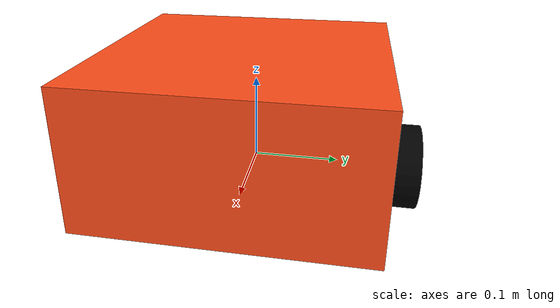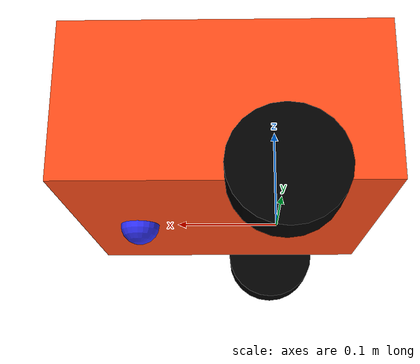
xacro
<?xml version="1.0"?>
<robot xmlns:xacro="http://www.ros.org/wiki/xacro">

    <material name="orange">
        <color rgba="1 0.3 0.1 1"/>
    </material>

    <material name="blue">
        <color rgba="0.2 0.2 1 1"/>
    </material>

    <material name="black">
        <color rgba="0 0 0 1"/>
    </material>

<!--BASE LINK-->
    <link name="base_link">
    </link>

<!--CHASSIS LINK-->
    <joint name="chassis_joint" type="fixed">
        <parent link="base_link"/>
        <child link="chassis"/>
        <origin xyz="-0.1 0 0"/>
    </joint>

    <link name="chassis">
        <visual>
            <origin xyz="0.15 0 0.075"/>
            <geometry>
                <box size="0.3 0.3 0.15"/>
            </geometry>
            <material name="orange"/>
        </visual>
        <collision>
            <origin xyz="0.15 0 0.075"/>
            <geometry>
                <box size="0.3 0.3 0.15"/>
            </geometry>
        </collision>
        <inertial>
            <origin xyz="0.15 0 0.075"/>
            <mass value="2.0"/>
            <inertia ixx="0.01" ixy="0.0" ixz="0.0" iyy="0.01" iyz="0.0" izz="0.01"/>
        </inertial>
    </link>

<!--LEFT WHEEL LINK-->
    <joint name="left_wheel_joint" type="continuous">
        <parent link="base_link"/>
        <child link="left_wheel"/>
        <origin xyz="0 0.175 0" rpy="-1.5708 0 0"/>
        <axis xyz="0 0 1"/>
    </joint>

    <link name="left_wheel">
        <visual>
            <geometry>
                <cylinder radius="0.05" length="0.04"/>
            </geometry>
            <material name="black"/>
        </visual>
        <collision>
            <geometry>
                <cylinder radius="0.05" length="0.04"/>
            </geometry>
        </collision>
        <inertial>
            <mass value="0.2"/>
            <inertia ixx="0.001" ixy="0.0" ixz="0.0" iyy="0.001" iyz="0.0" izz="0.001"/>
        </inertial>
    </link>

<!--RIGHT WHEEL LINK-->
    <joint name="right_wheel_joint" type="continuous">
        <parent link="base_link"/>
        <child link="right_wheel"/>
        <origin xyz="0 -0.175 0" rpy="1.5708 0 0"/>
        <axis xyz="0 0 -1"/>
    </joint>

    <link name="right_wheel">
        <visual>
            <geometry>
                <cylinder radius="0.05" length="0.04"/>
            </geometry>
            <material name="black"/>
        </visual>
        <collision>
            <geometry>
                <cylinder radius="0.05" length="0.04"/>
            </geometry>
        </collision>
        <inertial>
            <mass value="0.2"/>
            <inertia ixx="0.001" ixy="0.0" ixz="0.0" iyy="0.001" iyz="0.0" izz="0.001"/>
        </inertial>
    </link>

<!--CASTER WHEEL-->
    <joint name="caster_joint" type="fixed">
        <parent link="chassis"/>
        <child link="caster_wheel"/>
        <origin xyz="0.24 0 0"/>
    </joint>

    <link name="caster_wheel">
        <visual>
            <geometry>
                <sphere radius="0.02"/>
            </geometry>
            <material name="blue"/>
        </visual>
        <collision>
            <geometry>
                <sphere radius="0.02"/>
            </geometry>
        </collision>
        <inertial>
            <mass value="0.05"/>
            <inertia ixx="0.0001" ixy="0.0" ixz="0.0" iyy="0.0001" iyz="0.0" izz="0.0001"/>
        </inertial>
    </link>

</robot>
